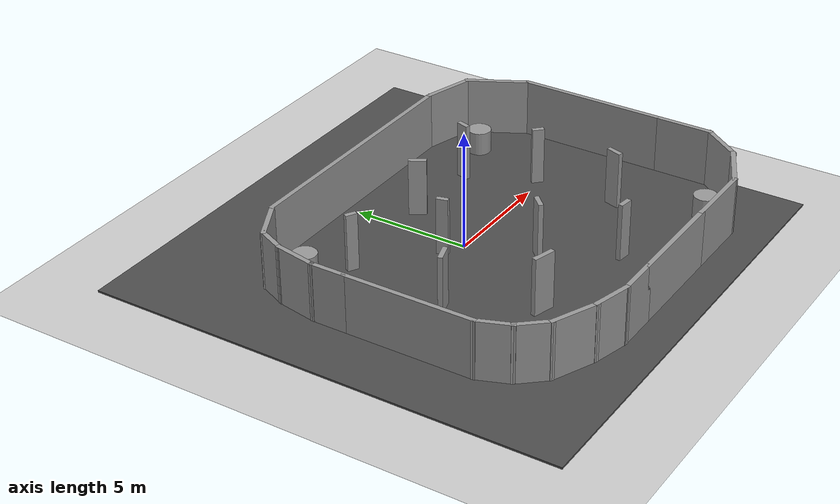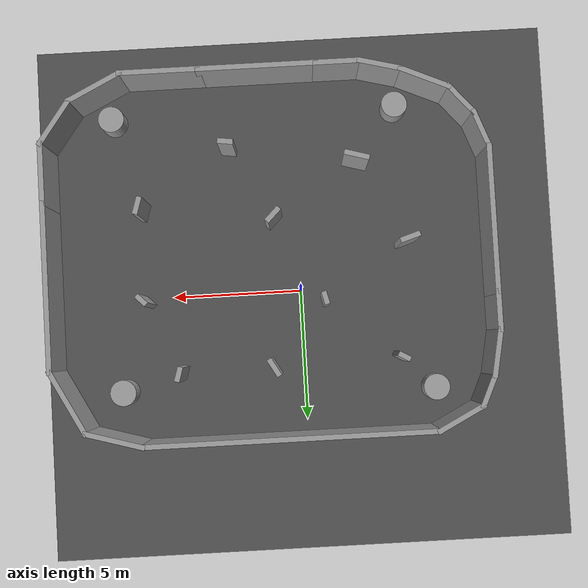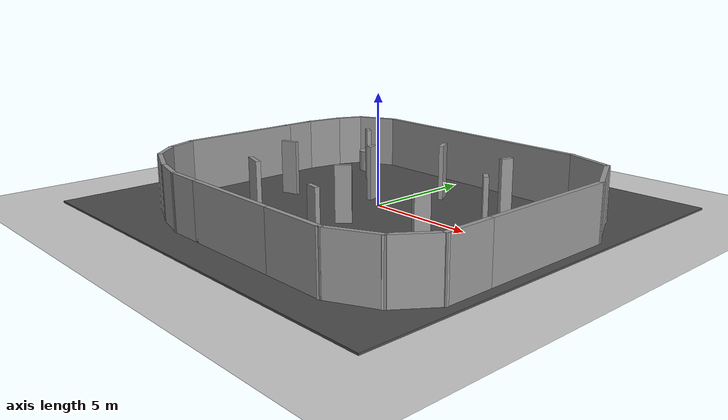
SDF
<sdf version="1.4">
 <world name="default">
  <light name="sun" type="directional">
   <pose>0 0 10 0 -0 0</pose>
   <diffuse>0.8 0.8 0.8 1</diffuse>
   <specular>0.2 0.2 0.2 1</specular>
   <attenuation>
    <range>1000</range>
    <constant>0.9</constant>
    <linear>0.01</linear>
    <quadratic>0.001</quadratic>
   </attenuation>
   <direction>-0.5 0.1 -0.9</direction>
  </light>
  <model name="ground_plane">
   <static>1</static>
   <link name="link">
    <collision name="collision">
     <geometry><plane><normal>0 0 1</normal><size>100 100</size></plane></geometry>
     <surface><friction><ode><mu>100</mu><mu2>50</mu2></ode></friction></surface>
    </collision>
    <visual name="visual">
     <cast_shadows>0</cast_shadows>
     <geometry><plane><normal>0 0 1</normal><size>100 100</size></plane></geometry>
     <material>
      <script><uri>file://media/materials/scripts/gazebo.material</uri><name>Gazebo/Grey</name></script>
     </material>
    </visual>
    <velocity_decay><linear>0</linear><angular>0</angular></velocity_decay>
   </link>
  </model>
  <physics type="ode">
   <max_step_size>0.001</max_step_size>
   <real_time_factor>1</real_time_factor>
   <real_time_update_rate>1000</real_time_update_rate>
   <gravity>0 0 -9.8</gravity>
  </physics>
  <scene><ambient>0.4 0.4 0.4 1</ambient><background>0.7 0.7 0.7 1</background><shadows>1</shadows></scene>
  <model name="asphalt_plane">
   <static>1</static>
   <link name="link">
    <collision name="collision"><geometry><box><size>20 20 0.1</size></box></geometry></collision>
    <visual name="visual">
     <cast_shadows>0</cast_shadows>
     <geometry><box><size>20 20 0.1</size></box></geometry>
     <material>
      <script>
       <uri>model://asphalt_plane/materials/scripts</uri>
       <uri>model://asphalt_plane/materials/textures</uri>
       <name>vrc/asphalt</name>
      </script>
     </material>
    </visual>
    <velocity_decay><linear>0</linear><angular>0</angular></velocity_decay>
   </link>
  </model>
  <model name="corridor_basic">
   <link name="Wall_0">
    <collision name="Wall_0_Collision">
     <geometry><box><size>2.05649 0.2 2.5</size></box></geometry>
     <pose>0 0 1.25 0 -0 0</pose>
    </collision>
    <visual name="Wall_0_Visual">
     <pose>0 0 1.25 0 -0 0</pose>
     <geometry><box><size>2.05649 0.2 2.5</size></box></geometry>
     <material>
      <script><uri>file://media/materials/scripts/gazebo.material</uri><name>Gazebo/Grey</name></script>
     </material>
    </visual>
    <velocity_decay><linear>0</linear><angular>0</angular></velocity_decay>
    <pose>-6.66045 8.13636 0 0 0 -2.66947</pose>
   </link>
   <link name="Wall_1">
    <collision name="Wall_1_Collision">
     <geometry><box><size>1.3966 0.2 2.5</size></box></geometry>
     <pose>0 0 1.25 0 -0 0</pose>
    </collision>
    <visual name="Wall_1_Visual">
     <pose>0 0 1.25 0 -0 0</pose>
     <geometry><box><size>1.3966 0.2 2.5</size></box></geometry>
     <material>
      <script><uri>file://media/materials/scripts/gazebo.material</uri><name>Gazebo/Grey</name></script>
     </material>
    </visual>
    <velocity_decay><linear>0</linear><angular>0</angular></velocity_decay>
    <pose>-7.7334 7.16895 0 0 0 -1.99499</pose>
   </link>
   <link name="Wall_10">
    <collision name="Wall_10_Collision">
     <geometry><box><size>4.63252 0.2 2.5</size></box></geometry>
     <pose>0 0 1.25 0 -0 0</pose>
    </collision>
    <visual name="Wall_10_Visual">
     <pose>0 0 1.25 0 -0 0</pose>
     <geometry><box><size>4.63252 0.2 2.5</size></box></geometry>
     <material>
      <script><uri>file://media/materials/scripts/gazebo.material</uri><name>Gazebo/Grey</name></script>
     </material>
    </visual>
    <velocity_decay><linear>0</linear><angular>0</angular></velocity_decay>
    <pose>0.216996 -5.40746 0 0 -0 0</pose>
   </link>
   <link name="Wall_11">
    <collision name="Wall_11_Collision">
     <geometry><box><size>3.15502 0.2 2.5</size></box></geometry>
     <pose>0 0 1.25 0 -0 0</pose>
    </collision>
    <visual name="Wall_11_Visual">
     <pose>0 0 1.25 0 -0 0</pose>
     <geometry><box><size>3.15502 0.2 2.5</size></box></geometry>
     <material>
      <script><uri>file://media/materials/scripts/gazebo.material</uri><name>Gazebo/Grey</name></script>
     </material>
    </visual>
    <velocity_decay><linear>0</linear><angular>0</angular></velocity_decay>
    <pose>3.91077 -5.40746 0 0 -0 0</pose>
   </link>
   <link name="Wall_12">
    <collision name="Wall_12_Collision">
     <geometry><box><size>2.3554 0.2 2.5</size></box></geometry>
     <pose>0 0 1.25 0 -0 0</pose>
    </collision>
    <visual name="Wall_12_Visual">
     <pose>0 0 1.25 0 -0 0</pose>
     <geometry><box><size>2.3554 0.2 2.5</size></box></geometry>
     <material>
      <script><uri>file://media/materials/scripts/gazebo.material</uri><name>Gazebo/Grey</name></script>
     </material>
    </visual>
    <velocity_decay><linear>0</linear><angular>0</angular></velocity_decay>
    <pose>6.35569 -4.93255 0 0 -0 0.456348</pose>
   </link>
   <link name="Wall_13">
    <collision name="Wall_13_Collision">
     <geometry><box><size>2.11393 0.2 2.5</size></box></geometry>
     <pose>0 0 1.25 0 -0 0</pose>
    </collision>
    <visual name="Wall_13_Visual">
     <pose>0 0 1.25 0 -0 0</pose>
     <geometry><box><size>2.11393 0.2 2.5</size></box></geometry>
     <material>
      <script><uri>file://media/materials/scripts/gazebo.material</uri><name>Gazebo/Grey</name></script>
     </material>
    </visual>
    <velocity_decay><linear>0</linear><angular>0</angular></velocity_decay>
    <pose>7.88597 -3.6837 0 0 -0 0.942</pose>
   </link>
   <link name="Wall_14">
    <collision name="Wall_14_Collision">
     <geometry><box><size>2.45144 0.2 2.5</size></box></geometry>
     <pose>0 0 1.25 0 -0 0</pose>
    </collision>
    <visual name="Wall_14_Visual">
     <pose>0 0 1.25 0 -0 0</pose>
     <geometry><box><size>2.45144 0.2 2.5</size></box></geometry>
     <material>
      <script><uri>file://media/materials/scripts/gazebo.material</uri><name>Gazebo/Grey</name></script>
     </material>
    </visual>
    <velocity_decay><linear>0</linear><angular>0</angular></velocity_decay>
    <pose>8.44883 -1.78405 0 0 -0 1.5708</pose>
   </link>
   <link name="Wall_15">
    <collision name="Wall_15_Collision">
     <geometry><box><size>6.497 0.2 2.5</size></box></geometry>
     <pose>0 0 1.25 0 -0 0</pose>
    </collision>
    <visual name="Wall_15_Visual">
     <pose>0 0 1.25 0 -0 0</pose>
     <geometry><box><size>6.497 0.2 2.5</size></box></geometry>
     <material>
      <script><uri>file://media/materials/scripts/gazebo.material</uri><name>Gazebo/Grey</name></script>
     </material>
    </visual>
    <velocity_decay><linear>0</linear><angular>0</angular></velocity_decay>
    <pose>8.44883 2.49017 0 0 -0 1.5708</pose>
   </link>
   <link name="Wall_16">
    <collision name="Wall_16_Collision">
     <geometry><box><size>2.82807 0.2 2.5</size></box></geometry>
     <pose>0 0 1.25 0 -0 0</pose>
    </collision>
    <visual name="Wall_16_Visual">
     <pose>0 0 1.25 0 -0 0</pose>
     <geometry><box><size>2.82807 0.2 2.5</size></box></geometry>
     <material>
      <script><uri>file://media/materials/scripts/gazebo.material</uri><name>Gazebo/Grey</name></script>
     </material>
    </visual>
    <velocity_decay><linear>0</linear><angular>0</angular></velocity_decay>
    <pose>7.8332 6.79957 0 0 -0 2.05839</pose>
   </link>
   <link name="Wall_17">
    <collision name="Wall_17_Collision">
     <geometry><box><size>2.35999 0.2 2.5</size></box></geometry>
     <pose>0 0 1.25 0 -0 0</pose>
    </collision>
    <visual name="Wall_17_Visual">
     <pose>0 0 1.25 0 -0 0</pose>
     <geometry><box><size>2.35999 0.2 2.5</size></box></geometry>
     <material>
      <script><uri>file://media/materials/scripts/gazebo.material</uri><name>Gazebo/Grey</name></script>
     </material>
    </visual>
    <velocity_decay><linear>0</linear><angular>0</angular></velocity_decay>
    <pose>6.1798 8.25949 0 0 -0 2.86106</pose>
   </link>
   <link name="Wall_18">
    <collision name="Wall_18_Collision">
     <geometry><box><size>11.1758 0.2 2.5</size></box></geometry>
     <pose>0 0 1.25 0 -0 0</pose>
    </collision>
    <visual name="Wall_18_Visual">
     <pose>0 0 1.25 0 -0 0</pose>
     <geometry><box><size>11.1758 0.2 2.5</size></box></geometry>
     <material>
      <script><uri>file://media/materials/scripts/gazebo.material</uri><name>Gazebo/Grey</name></script>
     </material>
    </visual>
    <velocity_decay><linear>0</linear><angular>0</angular></velocity_decay>
    <pose>-0.345864 8.55851 0 0 -0 3.14159</pose>
   </link>
   <link name="Wall_2">
    <collision name="Wall_2_Collision">
     <geometry><box><size>1.91801 0.2 2.5</size></box></geometry>
     <pose>0 0 1.25 0 -0 0</pose>
    </collision>
    <visual name="Wall_2_Visual">
     <pose>0 0 1.25 0 -0 0</pose>
     <geometry><box><size>1.91801 0.2 2.5</size></box></geometry>
     <material>
      <script><uri>file://media/materials/scripts/gazebo.material</uri><name>Gazebo/Grey</name></script>
     </material>
    </visual>
    <velocity_decay><linear>0</linear><angular>0</angular></velocity_decay>
    <pose>-8.13796 5.77939 0 0 0 -1.75614</pose>
   </link>
   <link name="Wall_20">
    <collision name="Wall_20_Collision">
     <geometry><box><size>0.48362 0.2 2.5</size></box></geometry>
     <pose>0 0 1.25 0 -0 0</pose>
    </collision>
    <visual name="Wall_20_Visual">
     <pose>0 0 1.25 0 -0 0</pose>
     <geometry><box><size>0.48362 0.2 2.5</size></box></geometry>
     <material>
      <script><uri>file://media/materials/scripts/gazebo.material</uri><name>Gazebo/Grey</name></script>
     </material>
    </visual>
    <velocity_decay><linear>0</linear><angular>0</angular></velocity_decay>
    <pose>-4.69044 5.74421 0 0 0 -0.519146</pose>
   </link>
   <link name="Wall_22">
    <collision name="Wall_22_Collision">
     <geometry><box><size>0.789704 0.2 2.5</size></box></geometry>
     <pose>0 0 1.25 0 -0 0</pose>
    </collision>
    <visual name="Wall_22_Visual">
     <pose>0 0 1.25 0 -0 0</pose>
     <geometry><box><size>0.789704 0.2 2.5</size></box></geometry>
     <material>
      <script><uri>file://media/materials/scripts/gazebo.material</uri><name>Gazebo/Grey</name></script>
     </material>
    </visual>
    <velocity_decay><linear>0</linear><angular>0</angular></velocity_decay>
    <pose>-5.16535 1.32927 0 0 -0 0.302885</pose>
   </link>
   <link name="Wall_25">
    <collision name="Wall_25_Collision">
     <geometry><box><size>0.736981 0.2 2.5</size></box></geometry>
     <pose>0 0 1.25 0 -0 0</pose>
    </collision>
    <visual name="Wall_25_Visual">
     <pose>0 0 1.25 0 -0 0</pose>
     <geometry><box><size>0.736981 0.2 2.5</size></box></geometry>
     <material>
      <script><uri>file://media/materials/scripts/gazebo.material</uri><name>Gazebo/Grey</name></script>
     </material>
    </visual>
    <velocity_decay><linear>0</linear><angular>0</angular></velocity_decay>
    <pose>0.140169 5.89865 0 0 0 -1.0472</pose>
   </link>
   <link name="Wall_28">
    <collision name="Wall_28_Collision">
     <geometry><box><size>0.968316 0.2 2.5</size></box></geometry>
     <pose>0 0 1.25 0 -0 0</pose>
    </collision>
    <visual name="Wall_28_Visual">
     <pose>0 0 1.25 0 -0 0</pose>
     <geometry><box><size>0.968316 0.2 2.5</size></box></geometry>
     <material>
      <script><uri>file://media/materials/scripts/gazebo.material</uri><name>Gazebo/Grey</name></script>
     </material>
    </visual>
    <velocity_decay><linear>0</linear><angular>0</angular></velocity_decay>
    <pose>-3.35365 -1.85441 0 0 0 -0.2783</pose>
   </link>
   <link name="Wall_3">
    <collision name="Wall_3_Collision">
     <geometry><box><size>1.60715 0.2 2.5</size></box></geometry>
     <pose>0 0 1.25 0 -0 0</pose>
    </collision>
    <visual name="Wall_3_Visual">
     <pose>0 0 1.25 0 -0 0</pose>
     <geometry><box><size>1.60715 0.2 2.5</size></box></geometry>
     <material>
      <script><uri>file://media/materials/scripts/gazebo.material</uri><name>Gazebo/Grey</name></script>
     </material>
    </visual>
    <velocity_decay><linear>0</linear><angular>0</angular></velocity_decay>
    <pose>-8.29627 4.23152 0 0 0 -1.5708</pose>
   </link>
   <link name="Wall_30">
    <collision name="Wall_30_Collision">
     <geometry><box><size>0.697503 0.2 2.5</size></box></geometry>
     <pose>0 0 1.25 0 -0 0</pose>
    </collision>
    <visual name="Wall_30_Visual">
     <pose>0 0 1.25 0 -0 0</pose>
     <geometry><box><size>0.697503 0.2 2.5</size></box></geometry>
     <material>
      <script><uri>file://media/materials/scripts/gazebo.material</uri><name>Gazebo/Grey</name></script>
     </material>
    </visual>
    <velocity_decay><linear>0</linear><angular>0</angular></velocity_decay>
    <pose>-0.099612 0.22114 0 0 -0 0.785398</pose>
   </link>
   <link name="Wall_32">
    <collision name="Wall_32_Collision">
     <geometry><box><size>0.498502 0.2 2.5</size></box></geometry>
     <pose>0 0 1.25 0 -0 0</pose>
    </collision>
    <visual name="Wall_32_Visual">
     <pose>0 0 1.25 0 -0 0</pose>
     <geometry><box><size>0.498502 0.2 2.5</size></box></geometry>
     <material>
      <script><uri>file://media/materials/scripts/gazebo.material</uri><name>Gazebo/Grey</name></script>
     </material>
    </visual>
    <velocity_decay><linear>0</linear><angular>0</angular></velocity_decay>
    <pose>4.93095 3.14098 0 0 0 -0.785398</pose>
   </link>
   <link name="Wall_34">
    <collision name="Wall_34_Collision">
     <geometry><box><size>0.588562 0.2 2.5</size></box></geometry>
     <pose>0 0 1.25 0 -0 0</pose>
    </collision>
    <visual name="Wall_34_Visual">
     <pose>0 0 1.25 0 -0 0</pose>
     <geometry><box><size>0.588562 0.2 2.5</size></box></geometry>
     <material>
      <script><uri>file://media/materials/scripts/gazebo.material</uri><name>Gazebo/Grey</name></script>
     </material>
    </visual>
    <velocity_decay><linear>0</linear><angular>0</angular></velocity_decay>
    <pose>1.53534 -2.61852 0 0 0 -0.1309</pose>
   </link>
   <link name="Wall_36">
    <collision name="Wall_36_Collision">
     <geometry><box><size>0.678483 0.2 2.5</size></box></geometry>
     <pose>0 0 1.25 0 -0 0</pose>
    </collision>
    <visual name="Wall_36_Visual">
     <pose>0 0 1.25 0 -0 0</pose>
     <geometry><box><size>0.678483 0.2 2.5</size></box></geometry>
     <material>
      <script><uri>file://media/materials/scripts/gazebo.material</uri><name>Gazebo/Grey</name></script>
     </material>
    </visual>
    <velocity_decay><linear>0</linear><angular>0</angular></velocity_decay>
    <pose>4.93095 -0.394488 0 0 -0 1.2723</pose>
   </link>
   <link name="Wall_4">
    <collision name="Wall_4_Collision">
     <geometry><box><size>5.65271 0.2 2.5</size></box></geometry>
     <pose>0 0 1.25 0 -0 0</pose>
    </collision>
    <visual name="Wall_4_Visual">
     <pose>0 0 1.25 0 -0 0</pose>
     <geometry><box><size>5.65271 0.2 2.5</size></box></geometry>
     <material>
      <script><uri>file://media/materials/scripts/gazebo.material</uri><name>Gazebo/Grey</name></script>
     </material>
    </visual>
    <velocity_decay><linear>0</linear><angular>0</angular></velocity_decay>
    <pose>-8.29627 0.80159 0 0 0 -1.5708</pose>
   </link>
   <link name="Wall_40">
    <collision name="Wall_40_Collision">
     <geometry><box><size>0.567277 0.2 2.5</size></box></geometry>
     <pose>0 0 1.25 0 -0 0</pose>
    </collision>
    <visual name="Wall_40_Visual">
     <pose>0 0 1.25 0 -0 0</pose>
     <geometry><box><size>0.567277 0.2 2.5</size></box></geometry>
     <material>
      <script><uri>file://media/materials/scripts/gazebo.material</uri><name>Gazebo/Grey</name></script>
     </material>
    </visual>
    <velocity_decay><linear>0</linear><angular>0</angular></velocity_decay>
    <pose>3.6821 5.95528 0 0 0 -1.86225</pose>
   </link>
   <link name="Wall_44">
    <collision name="Wall_44_Collision">
     <geometry><box><size>0.490092 0.2 2.5</size></box></geometry>
     <pose>0 0 1.25 0 -0 0</pose>
    </collision>
    <visual name="Wall_44_Visual">
     <pose>0 0 1.25 0 -0 0</pose>
     <geometry><box><size>0.490092 0.2 2.5</size></box></geometry>
     <material>
      <script><uri>file://media/materials/scripts/gazebo.material</uri><name>Gazebo/Grey</name></script>
     </material>
    </visual>
    <velocity_decay><linear>0</linear><angular>0</angular></velocity_decay>
    <pose>-1.89373 3.42241 0 0 -0 1.81577</pose>
   </link>
   <link name="Wall_5">
    <collision name="Wall_5_Collision">
     <geometry><box><size>1.59167 0.2 2.5</size></box></geometry>
     <pose>0 0 1.25 0 -0 0</pose>
    </collision>
    <visual name="Wall_5_Visual">
     <pose>0 0 1.25 0 -0 0</pose>
     <geometry><box><size>1.59167 0.2 2.5</size></box></geometry>
     <material>
      <script><uri>file://media/materials/scripts/gazebo.material</uri><name>Gazebo/Grey</name></script>
     </material>
    </visual>
    <velocity_decay><linear>0</linear><angular>0</angular></velocity_decay>
    <pose>-8.05001 -2.57557 0 0 0 -1.20907</pose>
   </link>
   <link name="Wall_6">
    <collision name="Wall_6_Collision">
     <geometry><box><size>1.54694 0.2 2.5</size></box></geometry>
     <pose>0 0 1.25 0 -0 0</pose>
    </collision>
    <visual name="Wall_6_Visual">
     <pose>0 0 1.25 0 -0 0</pose>
     <geometry><box><size>1.54694 0.2 2.5</size></box></geometry>
     <material>
      <script><uri>file://media/materials/scripts/gazebo.material</uri><name>Gazebo/Grey</name></script>
     </material>
    </visual>
    <velocity_decay><linear>0</linear><angular>0</angular></velocity_decay>
    <pose>-7.36403 -3.73647 0 0 0 -0.859337</pose>
   </link>
   <link name="Wall_7">
    <collision name="Wall_7_Collision">
     <geometry><box><size>2.12168 0.2 2.5</size></box></geometry>
     <pose>0 0 1.25 0 -0 0</pose>
    </collision>
    <visual name="Wall_7_Visual">
     <pose>0 0 1.25 0 -0 0</pose>
     <geometry><box><size>2.12168 0.2 2.5</size></box></geometry>
     <material>
      <script><uri>file://media/materials/scripts/gazebo.material</uri><name>Gazebo/Grey</name></script>
     </material>
    </visual>
    <velocity_decay><linear>0</linear><angular>0</angular></velocity_decay>
    <pose>-6.04482 -4.63353 0 0 0 -0.414507</pose>
   </link>
   <link name="Wall_8">
    <collision name="Wall_8_Collision">
     <geometry><box><size>1.7614 0.2 2.5</size></box></geometry>
     <pose>0 0 1.25 0 -0 0</pose>
    </collision>
    <visual name="Wall_8_Visual">
     <pose>0 0 1.25 0 -0 0</pose>
     <geometry><box><size>1.7614 0.2 2.5</size></box></geometry>
     <material>
      <script><uri>file://media/materials/scripts/gazebo.material</uri><name>Gazebo/Grey</name></script>
     </material>
    </visual>
    <velocity_decay><linear>0</linear><angular>0</angular></velocity_decay>
    <pose>-4.40901 -5.21398 0 0 0 -0.250443</pose>
   </link>
   <link name="Wall_9">
    <collision name="Wall_9_Collision">
     <geometry><box><size>1.8534 0.2 2.5</size></box></geometry>
     <pose>0 0 1.25 0 -0 0</pose>
    </collision>
    <visual name="Wall_9_Visual">
     <pose>0 0 1.25 0 -0 0</pose>
     <geometry><box><size>1.8534 0.2 2.5</size></box></geometry>
     <material>
      <script><uri>file://media/materials/scripts/gazebo.material</uri><name>Gazebo/Grey</name></script>
     </material>
    </visual>
    <velocity_decay><linear>0</linear><angular>0</angular></velocity_decay>
    <pose>-2.82597 -5.40746 0 0 -0 0</pose>
   </link>
   <static>1</static>
   <pose>1 -3 0 0 -0 0</pose>
  </model>
  <light name="sun_0" type="directional">
   <pose>3 -4 10 0 -0 0</pose>
   <diffuse>0.8 0.8 0.8 1</diffuse>
   <specular>0.2 0.2 0.2 1</specular>
   <attenuation>
    <range>1000</range>
    <constant>0.9</constant>
    <linear>0.01</linear>
    <quadratic>0.001</quadratic>
   </attenuation>
   <direction>-0.5 0.1 -0.9</direction>
  </light>
  <model name="unit_cylinder_1">
   <pose>7 -7 0.550001 -1e-06 1e-06 9e-06</pose>
   <link name="link">
    <inertial>
     <mass>1</mass>
     <inertia><ixx>1</ixx><ixy>0</ixy><ixz>0</ixz><iyy>1</iyy><iyz>0</iyz><izz>1</izz></inertia>
    </inertial>
    <collision name="collision">
     <geometry><cylinder><radius>0.5</radius><length>1</length></cylinder></geometry>
    </collision>
    <visual name="visual">
     <geometry><cylinder><radius>0.5</radius><length>1</length></cylinder></geometry>
     <material>
      <script><uri>file://media/materials/scripts/gazebo.material</uri><name>Gazebo/Grey</name></script>
     </material>
    </visual>
    <velocity_decay><linear>0</linear><angular>0</angular></velocity_decay>
   </link>
   <static>0</static>
  </model>
  <model name="unit_cylinder_2">
   <pose>-4.00001 -7 0.55 0 -0 3.6e-05</pose>
   <link name="link">
    <inertial>
     <mass>1</mass>
     <inertia><ixx>1</ixx><ixy>0</ixy><ixz>0</ixz><iyy>1</iyy><iyz>0</iyz><izz>1</izz></inertia>
    </inertial>
    <collision name="collision">
     <geometry><cylinder><radius>0.5</radius><length>1</length></cylinder></geometry>
    </collision>
    <visual name="visual">
     <geometry><cylinder><radius>0.5</radius><length>1</length></cylinder></geometry>
     <material>
      <script><uri>file://media/materials/scripts/gazebo.material</uri><name>Gazebo/Grey</name></script>
     </material>
    </visual>
    <velocity_decay><linear>0</linear><angular>0</angular></velocity_decay>
   </link>
   <static>0</static>
  </model>
  <model name="unit_cylinder_3">
   <pose>7 3.59667 0.550002 -4e-06 3e-06 1.61559e-27</pose>
   <link name="link">
    <inertial>
     <mass>1</mass>
     <inertia><ixx>1</ixx><ixy>0</ixy><ixz>0</ixz><iyy>1</iyy><iyz>0</iyz><izz>1</izz></inertia>
    </inertial>
    <collision name="collision">
     <geometry><cylinder><radius>0.5</radius><length>1</length></cylinder></geometry>
    </collision>
    <visual name="visual">
     <geometry><cylinder><radius>0.5</radius><length>1</length></cylinder></geometry>
     <material>
      <script><uri>file://media/materials/scripts/gazebo.material</uri><name>Gazebo/Grey</name></script>
     </material>
    </visual>
    <velocity_decay><linear>0</linear><angular>0</angular></velocity_decay>
   </link>
   <static>0</static>
  </model>
  <model name="unit_cylinder_4">
   <pose>-5 4 0.549999 -1e-06 1e-06 1.2e-05</pose>
   <link name="link">
    <inertial>
     <mass>1</mass>
     <inertia><ixx>1</ixx><ixy>0</ixy><ixz>0</ixz><iyy>1</iyy><iyz>0</iyz><izz>1</izz></inertia>
    </inertial>
    <collision name="collision">
     <geometry><cylinder><radius>0.5</radius><length>1</length></cylinder></geometry>
    </collision>
    <visual name="visual">
     <geometry><cylinder><radius>0.5</radius><length>1</length></cylinder></geometry>
     <material>
      <script><uri>file://media/materials/scripts/gazebo.material</uri><name>Gazebo/Grey</name></script>
     </material>
    </visual>
    <velocity_decay><linear>0</linear><angular>0</angular></velocity_decay>
   </link>
   <static>0</static>
  </model>
 </world>
</sdf>
